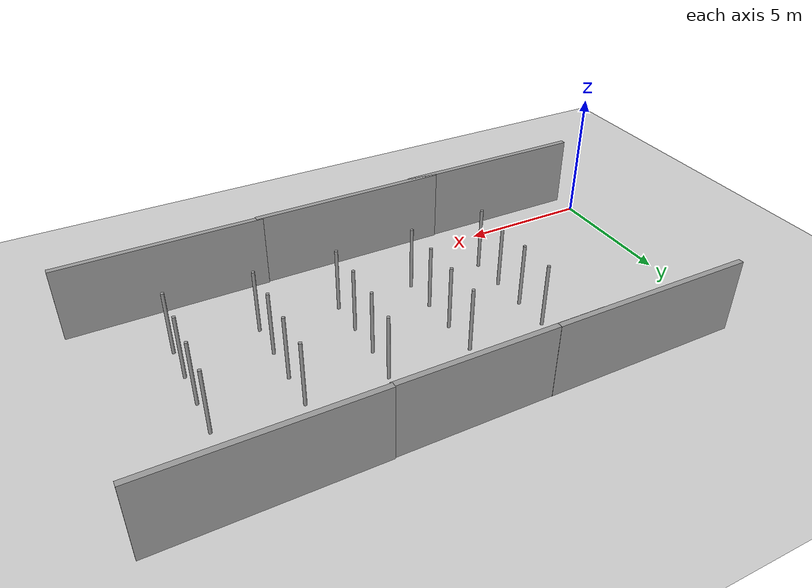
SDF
<sdf version="1.6">
 <world name="default">
  <model name="ground_plane">
   <static>1</static>
   <link name="link">
    <collision name="collision">
     <geometry><plane><normal>0 0 1</normal><size>100 100</size></plane></geometry>
     <surface><friction><ode><mu>100</mu><mu2>50</mu2></ode></friction></surface>
    </collision>
    <visual name="visual">
     <cast_shadows>0</cast_shadows>
     <geometry><plane><normal>0 0 1</normal><size>100 100</size></plane></geometry>
     <material>
      <script><uri>file://media/materials/scripts/gazebo.material</uri><name>Gazebo/Grey</name></script>
     </material>
    </visual>
   </link>
  </model>
  <model name="pole">
   <link name="link_0">
    <inertial>
     <mass>0.0364582</mass>
     <inertia>
      <ixx>0.00312124</ixx>
      <ixy>0</ixy>
      <ixz>0</ixz>
      <iyy>0.00312124</iyy>
      <iyz>0</iyz>
      <izz>0.00016615</izz>
     </inertia>
    </inertial>
    <visual name="visual">
     <geometry><cylinder><radius>0.06</radius><length>2.5</length></cylinder></geometry>
     <material>
      <lighting>1</lighting>
      <script><uri>file://media/materials/scripts/gazebo.material</uri><name>Gazebo/Grey</name></script>
      <ambient>0.3 0.3 0.3 1</ambient>
      <diffuse>0.7 0.7 0.7 1</diffuse>
      <specular>0.01 0.01 0.01 1</specular>
      <emissive>0 0 0 1</emissive>
      <shader type="vertex"><normal_map>__default__</normal_map></shader>
     </material>
    </visual>
    <collision name="collision">
     <geometry><cylinder><radius>0.06</radius><length>2.5</length></cylinder></geometry>
     <surface>
      <friction>
       <ode><mu>1</mu><mu2>1</mu2><fdir1>0 0 0</fdir1><slip1>0</slip1><slip2>0</slip2></ode>
       <torsional>
        <coefficient>1</coefficient>
        <patch_radius>0</patch_radius>
        <surface_radius>0</surface_radius>
        <use_patch_radius>1</use_patch_radius>
        <ode><slip>0</slip></ode>
       </torsional>
      </friction>
      <bounce><restitution_coefficient>0</restitution_coefficient><threshold>1e+06</threshold></bounce>
      <contact>
       <collide_without_contact>0</collide_without_contact>
       <collide_without_contact_bitmask>1</collide_without_contact_bitmask>
       <collide_bitmask>1</collide_bitmask>
       <ode>
        <soft_cfm>0</soft_cfm>
        <soft_erp>0.2</soft_erp>
        <kp>1e+13</kp>
        <kd>1</kd>
        <max_vel>0.01</max_vel>
        <min_depth>0</min_depth>
       </ode>
       <bullet>
        <split_impulse>1</split_impulse>
        <split_impulse_penetration_threshold>-0.01</split_impulse_penetration_threshold>
        <soft_cfm>0</soft_cfm>
        <soft_erp>0.2</soft_erp>
        <kp>1e+13</kp>
        <kd>1</kd>
       </bullet>
      </contact>
     </surface>
    </collision>
   </link>
   <static>0</static>
   <pose>6.00025 1.90193 1.24999 0 1e-06 -0.086409</pose>
  </model>
  <model name="pole_0">
   <link name="link_0">
    <inertial>
     <mass>0.0364582</mass>
     <inertia>
      <ixx>0.00312124</ixx>
      <ixy>0</ixy>
      <ixz>0</ixz>
      <iyy>0.00312124</iyy>
      <iyz>0</iyz>
      <izz>0.00016615</izz>
     </inertia>
    </inertial>
    <visual name="visual">
     <geometry><cylinder><radius>0.06</radius><length>2.5</length></cylinder></geometry>
     <material>
      <lighting>1</lighting>
      <script><uri>file://media/materials/scripts/gazebo.material</uri><name>Gazebo/Grey</name></script>
      <ambient>0.3 0.3 0.3 1</ambient>
      <diffuse>0.7 0.7 0.7 1</diffuse>
      <specular>0.01 0.01 0.01 1</specular>
      <emissive>0 0 0 1</emissive>
      <shader type="vertex"><normal_map>__default__</normal_map></shader>
     </material>
    </visual>
    <collision name="collision">
     <geometry><cylinder><radius>0.06</radius><length>2.5</length></cylinder></geometry>
     <surface>
      <friction>
       <ode><mu>1</mu><mu2>1</mu2><fdir1>0 0 0</fdir1><slip1>0</slip1><slip2>0</slip2></ode>
       <torsional>
        <coefficient>1</coefficient>
        <patch_radius>0</patch_radius>
        <surface_radius>0</surface_radius>
        <use_patch_radius>1</use_patch_radius>
        <ode><slip>0</slip></ode>
       </torsional>
      </friction>
      <bounce><restitution_coefficient>0</restitution_coefficient><threshold>1e+06</threshold></bounce>
      <contact>
       <collide_without_contact>0</collide_without_contact>
       <collide_without_contact_bitmask>1</collide_without_contact_bitmask>
       <collide_bitmask>1</collide_bitmask>
       <ode>
        <soft_cfm>0</soft_cfm>
        <soft_erp>0.2</soft_erp>
        <kp>1e+13</kp>
        <kd>1</kd>
        <max_vel>0.01</max_vel>
        <min_depth>0</min_depth>
       </ode>
       <bullet>
        <split_impulse>1</split_impulse>
        <split_impulse_penetration_threshold>-0.01</split_impulse_penetration_threshold>
        <soft_cfm>0</soft_cfm>
        <soft_erp>0.2</soft_erp>
        <kp>1e+13</kp>
        <kd>1</kd>
       </bullet>
      </contact>
     </surface>
    </collision>
   </link>
   <static>0</static>
   <pose>6.00016 3.30165 1.24999 0 -1e-06 -0.059185</pose>
  </model>
  <model name="pole_1">
   <link name="link_0">
    <inertial>
     <mass>0.0364582</mass>
     <inertia>
      <ixx>0.00312124</ixx>
      <ixy>0</ixy>
      <ixz>0</ixz>
      <iyy>0.00312124</iyy>
      <iyz>0</iyz>
      <izz>0.00016615</izz>
     </inertia>
    </inertial>
    <visual name="visual">
     <geometry><cylinder><radius>0.06</radius><length>2.5</length></cylinder></geometry>
     <material>
      <lighting>1</lighting>
      <script><uri>file://media/materials/scripts/gazebo.material</uri><name>Gazebo/Grey</name></script>
      <ambient>0.3 0.3 0.3 1</ambient>
      <diffuse>0.7 0.7 0.7 1</diffuse>
      <specular>0.01 0.01 0.01 1</specular>
      <emissive>0 0 0 1</emissive>
      <shader type="vertex"><normal_map>__default__</normal_map></shader>
     </material>
    </visual>
    <collision name="collision">
     <geometry><cylinder><radius>0.06</radius><length>2.5</length></cylinder></geometry>
     <surface>
      <friction>
       <ode><mu>1</mu><mu2>1</mu2><fdir1>0 0 0</fdir1><slip1>0</slip1><slip2>0</slip2></ode>
       <torsional>
        <coefficient>1</coefficient>
        <patch_radius>0</patch_radius>
        <surface_radius>0</surface_radius>
        <use_patch_radius>1</use_patch_radius>
        <ode><slip>0</slip></ode>
       </torsional>
      </friction>
      <bounce><restitution_coefficient>0</restitution_coefficient><threshold>1e+06</threshold></bounce>
      <contact>
       <collide_without_contact>0</collide_without_contact>
       <collide_without_contact_bitmask>1</collide_without_contact_bitmask>
       <collide_bitmask>1</collide_bitmask>
       <ode>
        <soft_cfm>0</soft_cfm>
        <soft_erp>0.2</soft_erp>
        <kp>1e+13</kp>
        <kd>1</kd>
        <max_vel>0.01</max_vel>
        <min_depth>0</min_depth>
       </ode>
       <bullet>
        <split_impulse>1</split_impulse>
        <split_impulse_penetration_threshold>-0.01</split_impulse_penetration_threshold>
        <soft_cfm>0</soft_cfm>
        <soft_erp>0.2</soft_erp>
        <kp>1e+13</kp>
        <kd>1</kd>
       </bullet>
      </contact>
     </surface>
    </collision>
   </link>
   <static>0</static>
   <pose>6.00017 4.70128 1.25 -1e-06 -1e-06 -0.059436</pose>
  </model>
  <model name="pole_2">
   <link name="link_0">
    <inertial>
     <mass>0.0364582</mass>
     <inertia>
      <ixx>0.00312124</ixx>
      <ixy>0</ixy>
      <ixz>0</ixz>
      <iyy>0.00312124</iyy>
      <iyz>0</iyz>
      <izz>0.00016615</izz>
     </inertia>
    </inertial>
    <visual name="visual">
     <geometry><cylinder><radius>0.06</radius><length>2.5</length></cylinder></geometry>
     <material>
      <lighting>1</lighting>
      <script><uri>file://media/materials/scripts/gazebo.material</uri><name>Gazebo/Grey</name></script>
      <ambient>0.3 0.3 0.3 1</ambient>
      <diffuse>0.7 0.7 0.7 1</diffuse>
      <specular>0.01 0.01 0.01 1</specular>
      <emissive>0 0 0 1</emissive>
      <shader type="vertex"><normal_map>__default__</normal_map></shader>
     </material>
    </visual>
    <collision name="collision">
     <geometry><cylinder><radius>0.06</radius><length>2.5</length></cylinder></geometry>
     <surface>
      <friction>
       <ode><mu>1</mu><mu2>1</mu2><fdir1>0 0 0</fdir1><slip1>0</slip1><slip2>0</slip2></ode>
       <torsional>
        <coefficient>1</coefficient>
        <patch_radius>0</patch_radius>
        <surface_radius>0</surface_radius>
        <use_patch_radius>1</use_patch_radius>
        <ode><slip>0</slip></ode>
       </torsional>
      </friction>
      <bounce><restitution_coefficient>0</restitution_coefficient><threshold>1e+06</threshold></bounce>
      <contact>
       <collide_without_contact>0</collide_without_contact>
       <collide_without_contact_bitmask>1</collide_without_contact_bitmask>
       <collide_bitmask>1</collide_bitmask>
       <ode>
        <soft_cfm>0</soft_cfm>
        <soft_erp>0.2</soft_erp>
        <kp>1e+13</kp>
        <kd>1</kd>
        <max_vel>0.01</max_vel>
        <min_depth>0</min_depth>
       </ode>
       <bullet>
        <split_impulse>1</split_impulse>
        <split_impulse_penetration_threshold>-0.01</split_impulse_penetration_threshold>
        <soft_cfm>0</soft_cfm>
        <soft_erp>0.2</soft_erp>
        <kp>1e+13</kp>
        <kd>1</kd>
       </bullet>
      </contact>
     </surface>
    </collision>
   </link>
   <static>0</static>
   <pose>6.00019 6.10112 1.24999 -1e-06 1e-06 -0.066745</pose>
  </model>
  <model name="pole_3">
   <link name="link_0">
    <inertial>
     <mass>0.0364582</mass>
     <inertia>
      <ixx>0.00312124</ixx>
      <ixy>0</ixy>
      <ixz>0</ixz>
      <iyy>0.00312124</iyy>
      <iyz>0</iyz>
      <izz>0.00016615</izz>
     </inertia>
    </inertial>
    <visual name="visual">
     <geometry><cylinder><radius>0.06</radius><length>2.5</length></cylinder></geometry>
     <material>
      <lighting>1</lighting>
      <script><uri>file://media/materials/scripts/gazebo.material</uri><name>Gazebo/Grey</name></script>
      <ambient>0.3 0.3 0.3 1</ambient>
      <diffuse>0.7 0.7 0.7 1</diffuse>
      <specular>0.01 0.01 0.01 1</specular>
      <emissive>0 0 0 1</emissive>
      <shader type="vertex"><normal_map>__default__</normal_map></shader>
     </material>
    </visual>
    <collision name="collision">
     <geometry><cylinder><radius>0.06</radius><length>2.5</length></cylinder></geometry>
     <surface>
      <friction>
       <ode><mu>1</mu><mu2>1</mu2><fdir1>0 0 0</fdir1><slip1>0</slip1><slip2>0</slip2></ode>
       <torsional>
        <coefficient>1</coefficient>
        <patch_radius>0</patch_radius>
        <surface_radius>0</surface_radius>
        <use_patch_radius>1</use_patch_radius>
        <ode><slip>0</slip></ode>
       </torsional>
      </friction>
      <bounce><restitution_coefficient>0</restitution_coefficient><threshold>1e+06</threshold></bounce>
      <contact>
       <collide_without_contact>0</collide_without_contact>
       <collide_without_contact_bitmask>1</collide_without_contact_bitmask>
       <collide_bitmask>1</collide_bitmask>
       <ode>
        <soft_cfm>0</soft_cfm>
        <soft_erp>0.2</soft_erp>
        <kp>1e+13</kp>
        <kd>1</kd>
        <max_vel>0.01</max_vel>
        <min_depth>0</min_depth>
       </ode>
       <bullet>
        <split_impulse>1</split_impulse>
        <split_impulse_penetration_threshold>-0.01</split_impulse_penetration_threshold>
        <soft_cfm>0</soft_cfm>
        <soft_erp>0.2</soft_erp>
        <kp>1e+13</kp>
        <kd>1</kd>
       </bullet>
      </contact>
     </surface>
    </collision>
   </link>
   <static>0</static>
   <pose>12.0002 1.90167 1.24999 -1e-06 -0 -0.059461</pose>
  </model>
  <model name="pole_4">
   <link name="link_0">
    <inertial>
     <mass>0.0364582</mass>
     <inertia>
      <ixx>0.00312124</ixx>
      <ixy>0</ixy>
      <ixz>0</ixz>
      <iyy>0.00312124</iyy>
      <iyz>0</iyz>
      <izz>0.00016615</izz>
     </inertia>
    </inertial>
    <visual name="visual">
     <geometry><cylinder><radius>0.06</radius><length>2.5</length></cylinder></geometry>
     <material>
      <lighting>1</lighting>
      <script><uri>file://media/materials/scripts/gazebo.material</uri><name>Gazebo/Grey</name></script>
      <ambient>0.3 0.3 0.3 1</ambient>
      <diffuse>0.7 0.7 0.7 1</diffuse>
      <specular>0.01 0.01 0.01 1</specular>
      <emissive>0 0 0 1</emissive>
      <shader type="vertex"><normal_map>__default__</normal_map></shader>
     </material>
    </visual>
    <collision name="collision">
     <geometry><cylinder><radius>0.06</radius><length>2.5</length></cylinder></geometry>
     <surface>
      <friction>
       <ode><mu>1</mu><mu2>1</mu2><fdir1>0 0 0</fdir1><slip1>0</slip1><slip2>0</slip2></ode>
       <torsional>
        <coefficient>1</coefficient>
        <patch_radius>0</patch_radius>
        <surface_radius>0</surface_radius>
        <use_patch_radius>1</use_patch_radius>
        <ode><slip>0</slip></ode>
       </torsional>
      </friction>
      <bounce><restitution_coefficient>0</restitution_coefficient><threshold>1e+06</threshold></bounce>
      <contact>
       <collide_without_contact>0</collide_without_contact>
       <collide_without_contact_bitmask>1</collide_without_contact_bitmask>
       <collide_bitmask>1</collide_bitmask>
       <ode>
        <soft_cfm>0</soft_cfm>
        <soft_erp>0.2</soft_erp>
        <kp>1e+13</kp>
        <kd>1</kd>
        <max_vel>0.01</max_vel>
        <min_depth>0</min_depth>
       </ode>
       <bullet>
        <split_impulse>1</split_impulse>
        <split_impulse_penetration_threshold>-0.01</split_impulse_penetration_threshold>
        <soft_cfm>0</soft_cfm>
        <soft_erp>0.2</soft_erp>
        <kp>1e+13</kp>
        <kd>1</kd>
       </bullet>
      </contact>
     </surface>
    </collision>
   </link>
   <static>0</static>
   <pose>9.00014 3.30162 1.24999 -1e-06 1e-06 -0.05632</pose>
  </model>
  <model name="pole_5">
   <link name="link_0">
    <inertial>
     <mass>0.0364582</mass>
     <inertia>
      <ixx>0.00312124</ixx>
      <ixy>0</ixy>
      <ixz>0</ixz>
      <iyy>0.00312124</iyy>
      <iyz>0</iyz>
      <izz>0.00016615</izz>
     </inertia>
    </inertial>
    <visual name="visual">
     <geometry><cylinder><radius>0.06</radius><length>2.5</length></cylinder></geometry>
     <material>
      <lighting>1</lighting>
      <script><uri>file://media/materials/scripts/gazebo.material</uri><name>Gazebo/Grey</name></script>
      <ambient>0.3 0.3 0.3 1</ambient>
      <diffuse>0.7 0.7 0.7 1</diffuse>
      <specular>0.01 0.01 0.01 1</specular>
      <emissive>0 0 0 1</emissive>
      <shader type="vertex"><normal_map>__default__</normal_map></shader>
     </material>
    </visual>
    <collision name="collision">
     <geometry><cylinder><radius>0.06</radius><length>2.5</length></cylinder></geometry>
     <surface>
      <friction>
       <ode><mu>1</mu><mu2>1</mu2><fdir1>0 0 0</fdir1><slip1>0</slip1><slip2>0</slip2></ode>
       <torsional>
        <coefficient>1</coefficient>
        <patch_radius>0</patch_radius>
        <surface_radius>0</surface_radius>
        <use_patch_radius>1</use_patch_radius>
        <ode><slip>0</slip></ode>
       </torsional>
      </friction>
      <bounce><restitution_coefficient>0</restitution_coefficient><threshold>1e+06</threshold></bounce>
      <contact>
       <collide_without_contact>0</collide_without_contact>
       <collide_without_contact_bitmask>1</collide_without_contact_bitmask>
       <collide_bitmask>1</collide_bitmask>
       <ode>
        <soft_cfm>0</soft_cfm>
        <soft_erp>0.2</soft_erp>
        <kp>1e+13</kp>
        <kd>1</kd>
        <max_vel>0.01</max_vel>
        <min_depth>0</min_depth>
       </ode>
       <bullet>
        <split_impulse>1</split_impulse>
        <split_impulse_penetration_threshold>-0.01</split_impulse_penetration_threshold>
        <soft_cfm>0</soft_cfm>
        <soft_erp>0.2</soft_erp>
        <kp>1e+13</kp>
        <kd>1</kd>
       </bullet>
      </contact>
     </surface>
    </collision>
   </link>
   <static>0</static>
   <pose>9.00017 4.70125 1.24999 -1e-06 1e-06 -0.058881</pose>
  </model>
  <model name="pole_6">
   <link name="link_0">
    <inertial>
     <mass>0.0364582</mass>
     <inertia>
      <ixx>0.00312124</ixx>
      <ixy>0</ixy>
      <ixz>0</ixz>
      <iyy>0.00312124</iyy>
      <iyz>0</iyz>
      <izz>0.00016615</izz>
     </inertia>
    </inertial>
    <visual name="visual">
     <geometry><cylinder><radius>0.06</radius><length>2.5</length></cylinder></geometry>
     <material>
      <lighting>1</lighting>
      <script><uri>file://media/materials/scripts/gazebo.material</uri><name>Gazebo/Grey</name></script>
      <ambient>0.3 0.3 0.3 1</ambient>
      <diffuse>0.7 0.7 0.7 1</diffuse>
      <specular>0.01 0.01 0.01 1</specular>
      <emissive>0 0 0 1</emissive>
      <shader type="vertex"><normal_map>__default__</normal_map></shader>
     </material>
    </visual>
    <collision name="collision">
     <geometry><cylinder><radius>0.06</radius><length>2.5</length></cylinder></geometry>
     <surface>
      <friction>
       <ode><mu>1</mu><mu2>1</mu2><fdir1>0 0 0</fdir1><slip1>0</slip1><slip2>0</slip2></ode>
       <torsional>
        <coefficient>1</coefficient>
        <patch_radius>0</patch_radius>
        <surface_radius>0</surface_radius>
        <use_patch_radius>1</use_patch_radius>
        <ode><slip>0</slip></ode>
       </torsional>
      </friction>
      <bounce><restitution_coefficient>0</restitution_coefficient><threshold>1e+06</threshold></bounce>
      <contact>
       <collide_without_contact>0</collide_without_contact>
       <collide_without_contact_bitmask>1</collide_without_contact_bitmask>
       <collide_bitmask>1</collide_bitmask>
       <ode>
        <soft_cfm>0</soft_cfm>
        <soft_erp>0.2</soft_erp>
        <kp>1e+13</kp>
        <kd>1</kd>
        <max_vel>0.01</max_vel>
        <min_depth>0</min_depth>
       </ode>
       <bullet>
        <split_impulse>1</split_impulse>
        <split_impulse_penetration_threshold>-0.01</split_impulse_penetration_threshold>
        <soft_cfm>0</soft_cfm>
        <soft_erp>0.2</soft_erp>
        <kp>1e+13</kp>
        <kd>1</kd>
       </bullet>
      </contact>
     </surface>
    </collision>
   </link>
   <static>0</static>
   <pose>9.00015 6.10129 1.25 -1e-06 -1e-06 -0.078964</pose>
  </model>
  <model name="pole_7">
   <link name="link_0">
    <inertial>
     <mass>0.0364582</mass>
     <inertia>
      <ixx>0.00312124</ixx>
      <ixy>0</ixy>
      <ixz>0</ixz>
      <iyy>0.00312124</iyy>
      <iyz>0</iyz>
      <izz>0.00016615</izz>
     </inertia>
    </inertial>
    <visual name="visual">
     <geometry><cylinder><radius>0.06</radius><length>2.5</length></cylinder></geometry>
     <material>
      <lighting>1</lighting>
      <script><uri>file://media/materials/scripts/gazebo.material</uri><name>Gazebo/Grey</name></script>
      <ambient>0.3 0.3 0.3 1</ambient>
      <diffuse>0.7 0.7 0.7 1</diffuse>
      <specular>0.01 0.01 0.01 1</specular>
      <emissive>0 0 0 1</emissive>
      <shader type="vertex"><normal_map>__default__</normal_map></shader>
     </material>
    </visual>
    <collision name="collision">
     <geometry><cylinder><radius>0.06</radius><length>2.5</length></cylinder></geometry>
     <surface>
      <friction>
       <ode><mu>1</mu><mu2>1</mu2><fdir1>0 0 0</fdir1><slip1>0</slip1><slip2>0</slip2></ode>
       <torsional>
        <coefficient>1</coefficient>
        <patch_radius>0</patch_radius>
        <surface_radius>0</surface_radius>
        <use_patch_radius>1</use_patch_radius>
        <ode><slip>0</slip></ode>
       </torsional>
      </friction>
      <bounce><restitution_coefficient>0</restitution_coefficient><threshold>1e+06</threshold></bounce>
      <contact>
       <collide_without_contact>0</collide_without_contact>
       <collide_without_contact_bitmask>1</collide_without_contact_bitmask>
       <collide_bitmask>1</collide_bitmask>
       <ode>
        <soft_cfm>0</soft_cfm>
        <soft_erp>0.2</soft_erp>
        <kp>1e+13</kp>
        <kd>1</kd>
        <max_vel>0.01</max_vel>
        <min_depth>0</min_depth>
       </ode>
       <bullet>
        <split_impulse>1</split_impulse>
        <split_impulse_penetration_threshold>-0.01</split_impulse_penetration_threshold>
        <soft_cfm>0</soft_cfm>
        <soft_erp>0.2</soft_erp>
        <kp>1e+13</kp>
        <kd>1</kd>
       </bullet>
      </contact>
     </surface>
    </collision>
   </link>
   <static>0</static>
   <pose>9.00026 1.90181 1.25 0 -1e-06 -0.052308</pose>
  </model>
  <model name="pole_8">
   <link name="link_0">
    <inertial>
     <mass>0.0364582</mass>
     <inertia>
      <ixx>0.00312124</ixx>
      <ixy>0</ixy>
      <ixz>0</ixz>
      <iyy>0.00312124</iyy>
      <iyz>0</iyz>
      <izz>0.00016615</izz>
     </inertia>
    </inertial>
    <visual name="visual">
     <geometry><cylinder><radius>0.06</radius><length>2.5</length></cylinder></geometry>
     <material>
      <lighting>1</lighting>
      <script><uri>file://media/materials/scripts/gazebo.material</uri><name>Gazebo/Grey</name></script>
      <ambient>0.3 0.3 0.3 1</ambient>
      <diffuse>0.7 0.7 0.7 1</diffuse>
      <specular>0.01 0.01 0.01 1</specular>
      <emissive>0 0 0 1</emissive>
      <shader type="vertex"><normal_map>__default__</normal_map></shader>
     </material>
    </visual>
    <collision name="collision">
     <geometry><cylinder><radius>0.06</radius><length>2.5</length></cylinder></geometry>
     <surface>
      <friction>
       <ode><mu>1</mu><mu2>1</mu2><fdir1>0 0 0</fdir1><slip1>0</slip1><slip2>0</slip2></ode>
       <torsional>
        <coefficient>1</coefficient>
        <patch_radius>0</patch_radius>
        <surface_radius>0</surface_radius>
        <use_patch_radius>1</use_patch_radius>
        <ode><slip>0</slip></ode>
       </torsional>
      </friction>
      <bounce><restitution_coefficient>0</restitution_coefficient><threshold>1e+06</threshold></bounce>
      <contact>
       <collide_without_contact>0</collide_without_contact>
       <collide_without_contact_bitmask>1</collide_without_contact_bitmask>
       <collide_bitmask>1</collide_bitmask>
       <ode>
        <soft_cfm>0</soft_cfm>
        <soft_erp>0.2</soft_erp>
        <kp>1e+13</kp>
        <kd>1</kd>
        <max_vel>0.01</max_vel>
        <min_depth>0</min_depth>
       </ode>
       <bullet>
        <split_impulse>1</split_impulse>
        <split_impulse_penetration_threshold>-0.01</split_impulse_penetration_threshold>
        <soft_cfm>0</soft_cfm>
        <soft_erp>0.2</soft_erp>
        <kp>1e+13</kp>
        <kd>1</kd>
       </bullet>
      </contact>
     </surface>
    </collision>
   </link>
   <static>0</static>
   <pose>12.0002 3.30152 1.24999 0 -1e-06 -0.054215</pose>
  </model>
  <model name="pole_9">
   <link name="link_0">
    <inertial>
     <mass>0.0364582</mass>
     <inertia>
      <ixx>0.00312124</ixx>
      <ixy>0</ixy>
      <ixz>0</ixz>
      <iyy>0.00312124</iyy>
      <iyz>0</iyz>
      <izz>0.00016615</izz>
     </inertia>
    </inertial>
    <visual name="visual">
     <geometry><cylinder><radius>0.06</radius><length>2.5</length></cylinder></geometry>
     <material>
      <lighting>1</lighting>
      <script><uri>file://media/materials/scripts/gazebo.material</uri><name>Gazebo/Grey</name></script>
      <ambient>0.3 0.3 0.3 1</ambient>
      <diffuse>0.7 0.7 0.7 1</diffuse>
      <specular>0.01 0.01 0.01 1</specular>
      <emissive>0 0 0 1</emissive>
      <shader type="vertex"><normal_map>__default__</normal_map></shader>
     </material>
    </visual>
    <collision name="collision">
     <geometry><cylinder><radius>0.06</radius><length>2.5</length></cylinder></geometry>
     <surface>
      <friction>
       <ode><mu>1</mu><mu2>1</mu2><fdir1>0 0 0</fdir1><slip1>0</slip1><slip2>0</slip2></ode>
       <torsional>
        <coefficient>1</coefficient>
        <patch_radius>0</patch_radius>
        <surface_radius>0</surface_radius>
        <use_patch_radius>1</use_patch_radius>
        <ode><slip>0</slip></ode>
       </torsional>
      </friction>
      <bounce><restitution_coefficient>0</restitution_coefficient><threshold>1e+06</threshold></bounce>
      <contact>
       <collide_without_contact>0</collide_without_contact>
       <collide_without_contact_bitmask>1</collide_without_contact_bitmask>
       <collide_bitmask>1</collide_bitmask>
       <ode>
        <soft_cfm>0</soft_cfm>
        <soft_erp>0.2</soft_erp>
        <kp>1e+13</kp>
        <kd>1</kd>
        <max_vel>0.01</max_vel>
        <min_depth>0</min_depth>
       </ode>
       <bullet>
        <split_impulse>1</split_impulse>
        <split_impulse_penetration_threshold>-0.01</split_impulse_penetration_threshold>
        <soft_cfm>0</soft_cfm>
        <soft_erp>0.2</soft_erp>
        <kp>1e+13</kp>
        <kd>1</kd>
       </bullet>
      </contact>
     </surface>
    </collision>
   </link>
   <static>0</static>
   <pose>12.0002 4.70116 1.25 0 1e-06 -0.058336</pose>
  </model>
  <model name="pole_10">
   <link name="link_0">
    <inertial>
     <mass>0.0364582</mass>
     <inertia>
      <ixx>0.00312124</ixx>
      <ixy>0</ixy>
      <ixz>0</ixz>
      <iyy>0.00312124</iyy>
      <iyz>0</iyz>
      <izz>0.00016615</izz>
     </inertia>
    </inertial>
    <visual name="visual">
     <geometry><cylinder><radius>0.06</radius><length>2.5</length></cylinder></geometry>
     <material>
      <lighting>1</lighting>
      <script><uri>file://media/materials/scripts/gazebo.material</uri><name>Gazebo/Grey</name></script>
      <ambient>0.3 0.3 0.3 1</ambient>
      <diffuse>0.7 0.7 0.7 1</diffuse>
      <specular>0.01 0.01 0.01 1</specular>
      <emissive>0 0 0 1</emissive>
      <shader type="vertex"><normal_map>__default__</normal_map></shader>
     </material>
    </visual>
    <collision name="collision">
     <geometry><cylinder><radius>0.06</radius><length>2.5</length></cylinder></geometry>
     <surface>
      <friction>
       <ode><mu>1</mu><mu2>1</mu2><fdir1>0 0 0</fdir1><slip1>0</slip1><slip2>0</slip2></ode>
       <torsional>
        <coefficient>1</coefficient>
        <patch_radius>0</patch_radius>
        <surface_radius>0</surface_radius>
        <use_patch_radius>1</use_patch_radius>
        <ode><slip>0</slip></ode>
       </torsional>
      </friction>
      <bounce><restitution_coefficient>0</restitution_coefficient><threshold>1e+06</threshold></bounce>
      <contact>
       <collide_without_contact>0</collide_without_contact>
       <collide_without_contact_bitmask>1</collide_without_contact_bitmask>
       <collide_bitmask>1</collide_bitmask>
       <ode>
        <soft_cfm>0</soft_cfm>
        <soft_erp>0.2</soft_erp>
        <kp>1e+13</kp>
        <kd>1</kd>
        <max_vel>0.01</max_vel>
        <min_depth>0</min_depth>
       </ode>
       <bullet>
        <split_impulse>1</split_impulse>
        <split_impulse_penetration_threshold>-0.01</split_impulse_penetration_threshold>
        <soft_cfm>0</soft_cfm>
        <soft_erp>0.2</soft_erp>
        <kp>1e+13</kp>
        <kd>1</kd>
       </bullet>
      </contact>
     </surface>
    </collision>
   </link>
   <static>0</static>
   <pose>12.1071 6.10119 1.25 -0 1e-06 -0.055066</pose>
  </model>
  <model name="pole_11">
   <link name="link_0">
    <inertial>
     <mass>0.0364582</mass>
     <inertia>
      <ixx>0.00312124</ixx>
      <ixy>0</ixy>
      <ixz>0</ixz>
      <iyy>0.00312124</iyy>
      <iyz>0</iyz>
      <izz>0.00016615</izz>
     </inertia>
    </inertial>
    <visual name="visual">
     <geometry><cylinder><radius>0.06</radius><length>2.5</length></cylinder></geometry>
     <material>
      <lighting>1</lighting>
      <script><uri>file://media/materials/scripts/gazebo.material</uri><name>Gazebo/Grey</name></script>
      <ambient>0.3 0.3 0.3 1</ambient>
      <diffuse>0.7 0.7 0.7 1</diffuse>
      <specular>0.01 0.01 0.01 1</specular>
      <emissive>0 0 0 1</emissive>
      <shader type="vertex"><normal_map>__default__</normal_map></shader>
     </material>
    </visual>
    <collision name="collision">
     <geometry><cylinder><radius>0.06</radius><length>2.5</length></cylinder></geometry>
     <surface>
      <friction>
       <ode><mu>1</mu><mu2>1</mu2><fdir1>0 0 0</fdir1><slip1>0</slip1><slip2>0</slip2></ode>
       <torsional>
        <coefficient>1</coefficient>
        <patch_radius>0</patch_radius>
        <surface_radius>0</surface_radius>
        <use_patch_radius>1</use_patch_radius>
        <ode><slip>0</slip></ode>
       </torsional>
      </friction>
      <bounce><restitution_coefficient>0</restitution_coefficient><threshold>1e+06</threshold></bounce>
      <contact>
       <collide_without_contact>0</collide_without_contact>
       <collide_without_contact_bitmask>1</collide_without_contact_bitmask>
       <collide_bitmask>1</collide_bitmask>
       <ode>
        <soft_cfm>0</soft_cfm>
        <soft_erp>0.2</soft_erp>
        <kp>1e+13</kp>
        <kd>1</kd>
        <max_vel>0.01</max_vel>
        <min_depth>0</min_depth>
       </ode>
       <bullet>
        <split_impulse>1</split_impulse>
        <split_impulse_penetration_threshold>-0.01</split_impulse_penetration_threshold>
        <soft_cfm>0</soft_cfm>
        <soft_erp>0.2</soft_erp>
        <kp>1e+13</kp>
        <kd>1</kd>
       </bullet>
      </contact>
     </surface>
    </collision>
   </link>
   <static>0</static>
   <pose>15.0002 1.80129 1.24999 -1e-06 1e-06 -0.051988</pose>
  </model>
  <model name="pole_12">
   <link name="link_0">
    <inertial>
     <mass>0.0364582</mass>
     <inertia>
      <ixx>0.00312124</ixx>
      <ixy>0</ixy>
      <ixz>0</ixz>
      <iyy>0.00312124</iyy>
      <iyz>0</iyz>
      <izz>0.00016615</izz>
     </inertia>
    </inertial>
    <visual name="visual">
     <geometry><cylinder><radius>0.06</radius><length>2.5</length></cylinder></geometry>
     <material>
      <lighting>1</lighting>
      <script><uri>file://media/materials/scripts/gazebo.material</uri><name>Gazebo/Grey</name></script>
      <ambient>0.3 0.3 0.3 1</ambient>
      <diffuse>0.7 0.7 0.7 1</diffuse>
      <specular>0.01 0.01 0.01 1</specular>
      <emissive>0 0 0 1</emissive>
      <shader type="vertex"><normal_map>__default__</normal_map></shader>
     </material>
    </visual>
    <collision name="collision">
     <geometry><cylinder><radius>0.06</radius><length>2.5</length></cylinder></geometry>
     <surface>
      <friction>
       <ode><mu>1</mu><mu2>1</mu2><fdir1>0 0 0</fdir1><slip1>0</slip1><slip2>0</slip2></ode>
       <torsional>
        <coefficient>1</coefficient>
        <patch_radius>0</patch_radius>
        <surface_radius>0</surface_radius>
        <use_patch_radius>1</use_patch_radius>
        <ode><slip>0</slip></ode>
       </torsional>
      </friction>
      <bounce><restitution_coefficient>0</restitution_coefficient><threshold>1e+06</threshold></bounce>
      <contact>
       <collide_without_contact>0</collide_without_contact>
       <collide_without_contact_bitmask>1</collide_without_contact_bitmask>
       <collide_bitmask>1</collide_bitmask>
       <ode>
        <soft_cfm>0</soft_cfm>
        <soft_erp>0.2</soft_erp>
        <kp>1e+13</kp>
        <kd>1</kd>
        <max_vel>0.01</max_vel>
        <min_depth>0</min_depth>
       </ode>
       <bullet>
        <split_impulse>1</split_impulse>
        <split_impulse_penetration_threshold>-0.01</split_impulse_penetration_threshold>
        <soft_cfm>0</soft_cfm>
        <soft_erp>0.2</soft_erp>
        <kp>1e+13</kp>
        <kd>1</kd>
       </bullet>
      </contact>
     </surface>
    </collision>
   </link>
   <static>0</static>
   <pose>18.0002 1.60177 1.25 0 1e-06 -0.053116</pose>
  </model>
  <model name="pole_14">
   <link name="link_0">
    <inertial>
     <mass>0.0364582</mass>
     <inertia>
      <ixx>0.00312124</ixx>
      <ixy>0</ixy>
      <ixz>0</ixz>
      <iyy>0.00312124</iyy>
      <iyz>0</iyz>
      <izz>0.00016615</izz>
     </inertia>
    </inertial>
    <visual name="visual">
     <geometry><cylinder><radius>0.06</radius><length>2.5</length></cylinder></geometry>
     <material>
      <lighting>1</lighting>
      <script><uri>file://media/materials/scripts/gazebo.material</uri><name>Gazebo/Grey</name></script>
      <ambient>0.3 0.3 0.3 1</ambient>
      <diffuse>0.7 0.7 0.7 1</diffuse>
      <specular>0.01 0.01 0.01 1</specular>
      <emissive>0 0 0 1</emissive>
      <shader type="vertex"><normal_map>__default__</normal_map></shader>
     </material>
    </visual>
    <collision name="collision">
     <geometry><cylinder><radius>0.06</radius><length>2.5</length></cylinder></geometry>
     <surface>
      <friction>
       <ode><mu>1</mu><mu2>1</mu2><fdir1>0 0 0</fdir1><slip1>0</slip1><slip2>0</slip2></ode>
       <torsional>
        <coefficient>1</coefficient>
        <patch_radius>0</patch_radius>
        <surface_radius>0</surface_radius>
        <use_patch_radius>1</use_patch_radius>
        <ode><slip>0</slip></ode>
       </torsional>
      </friction>
      <bounce><restitution_coefficient>0</restitution_coefficient><threshold>1e+06</threshold></bounce>
      <contact>
       <collide_without_contact>0</collide_without_contact>
       <collide_without_contact_bitmask>1</collide_without_contact_bitmask>
       <collide_bitmask>1</collide_bitmask>
       <ode>
        <soft_cfm>0</soft_cfm>
        <soft_erp>0.2</soft_erp>
        <kp>1e+13</kp>
        <kd>1</kd>
        <max_vel>0.01</max_vel>
        <min_depth>0</min_depth>
       </ode>
       <bullet>
        <split_impulse>1</split_impulse>
        <split_impulse_penetration_threshold>-0.01</split_impulse_penetration_threshold>
        <soft_cfm>0</soft_cfm>
        <soft_erp>0.2</soft_erp>
        <kp>1e+13</kp>
        <kd>1</kd>
       </bullet>
      </contact>
     </surface>
    </collision>
   </link>
   <static>0</static>
   <pose>15.0002 3.20142 1.25 -1e-06 -1e-06 -0.027402</pose>
  </model>
  <model name="pole_15">
   <link name="link_0">
    <inertial>
     <mass>0.0364582</mass>
     <inertia>
      <ixx>0.00312124</ixx>
      <ixy>0</ixy>
      <ixz>0</ixz>
      <iyy>0.00312124</iyy>
      <iyz>0</iyz>
      <izz>0.00016615</izz>
     </inertia>
    </inertial>
    <visual name="visual">
     <geometry><cylinder><radius>0.06</radius><length>2.5</length></cylinder></geometry>
     <material>
      <lighting>1</lighting>
      <script><uri>file://media/materials/scripts/gazebo.material</uri><name>Gazebo/Grey</name></script>
      <ambient>0.3 0.3 0.3 1</ambient>
      <diffuse>0.7 0.7 0.7 1</diffuse>
      <specular>0.01 0.01 0.01 1</specular>
      <emissive>0 0 0 1</emissive>
      <shader type="vertex"><normal_map>__default__</normal_map></shader>
     </material>
    </visual>
    <collision name="collision">
     <geometry><cylinder><radius>0.06</radius><length>2.5</length></cylinder></geometry>
     <surface>
      <friction>
       <ode><mu>1</mu><mu2>1</mu2><fdir1>0 0 0</fdir1><slip1>0</slip1><slip2>0</slip2></ode>
       <torsional>
        <coefficient>1</coefficient>
        <patch_radius>0</patch_radius>
        <surface_radius>0</surface_radius>
        <use_patch_radius>1</use_patch_radius>
        <ode><slip>0</slip></ode>
       </torsional>
      </friction>
      <bounce><restitution_coefficient>0</restitution_coefficient><threshold>1e+06</threshold></bounce>
      <contact>
       <collide_without_contact>0</collide_without_contact>
       <collide_without_contact_bitmask>1</collide_without_contact_bitmask>
       <collide_bitmask>1</collide_bitmask>
       <ode>
        <soft_cfm>0</soft_cfm>
        <soft_erp>0.2</soft_erp>
        <kp>1e+13</kp>
        <kd>1</kd>
        <max_vel>0.01</max_vel>
        <min_depth>0</min_depth>
       </ode>
       <bullet>
        <split_impulse>1</split_impulse>
        <split_impulse_penetration_threshold>-0.01</split_impulse_penetration_threshold>
        <soft_cfm>0</soft_cfm>
        <soft_erp>0.2</soft_erp>
        <kp>1e+13</kp>
        <kd>1</kd>
       </bullet>
      </contact>
     </surface>
    </collision>
   </link>
   <static>0</static>
   <pose>18.0002 3.00143 1.24999 -1e-06 -0 0.034978</pose>
  </model>
  <model name="pole_17">
   <link name="link_0">
    <inertial>
     <mass>0.0364582</mass>
     <inertia>
      <ixx>0.00312124</ixx>
      <ixy>0</ixy>
      <ixz>0</ixz>
      <iyy>0.00312124</iyy>
      <iyz>0</iyz>
      <izz>0.00016615</izz>
     </inertia>
    </inertial>
    <visual name="visual">
     <geometry><cylinder><radius>0.06</radius><length>2.5</length></cylinder></geometry>
     <material>
      <lighting>1</lighting>
      <script><uri>file://media/materials/scripts/gazebo.material</uri><name>Gazebo/Grey</name></script>
      <ambient>0.3 0.3 0.3 1</ambient>
      <diffuse>0.7 0.7 0.7 1</diffuse>
      <specular>0.01 0.01 0.01 1</specular>
      <emissive>0 0 0 1</emissive>
      <shader type="vertex"><normal_map>__default__</normal_map></shader>
     </material>
    </visual>
    <collision name="collision">
     <geometry><cylinder><radius>0.06</radius><length>2.5</length></cylinder></geometry>
     <surface>
      <friction>
       <ode><mu>1</mu><mu2>1</mu2><fdir1>0 0 0</fdir1><slip1>0</slip1><slip2>0</slip2></ode>
       <torsional>
        <coefficient>1</coefficient>
        <patch_radius>0</patch_radius>
        <surface_radius>0</surface_radius>
        <use_patch_radius>1</use_patch_radius>
        <ode><slip>0</slip></ode>
       </torsional>
      </friction>
      <bounce><restitution_coefficient>0</restitution_coefficient><threshold>1e+06</threshold></bounce>
      <contact>
       <collide_without_contact>0</collide_without_contact>
       <collide_without_contact_bitmask>1</collide_without_contact_bitmask>
       <collide_bitmask>1</collide_bitmask>
       <ode>
        <soft_cfm>0</soft_cfm>
        <soft_erp>0.2</soft_erp>
        <kp>1e+13</kp>
        <kd>1</kd>
        <max_vel>0.01</max_vel>
        <min_depth>0</min_depth>
       </ode>
       <bullet>
        <split_impulse>1</split_impulse>
        <split_impulse_penetration_threshold>-0.01</split_impulse_penetration_threshold>
        <soft_cfm>0</soft_cfm>
        <soft_erp>0.2</soft_erp>
        <kp>1e+13</kp>
        <kd>1</kd>
       </bullet>
      </contact>
     </surface>
    </collision>
   </link>
   <static>0</static>
   <pose>15.0002 4.60107 1.25 0 -1e-06 -0.057479</pose>
  </model>
  <model name="pole_20">
   <link name="link_0">
    <inertial>
     <mass>0.0364582</mass>
     <inertia>
      <ixx>0.00312124</ixx>
      <ixy>0</ixy>
      <ixz>0</ixz>
      <iyy>0.00312124</iyy>
      <iyz>0</iyz>
      <izz>0.00016615</izz>
     </inertia>
    </inertial>
    <visual name="visual">
     <geometry><cylinder><radius>0.06</radius><length>2.5</length></cylinder></geometry>
     <material>
      <lighting>1</lighting>
      <script><uri>file://media/materials/scripts/gazebo.material</uri><name>Gazebo/Grey</name></script>
      <ambient>0.3 0.3 0.3 1</ambient>
      <diffuse>0.7 0.7 0.7 1</diffuse>
      <specular>0.01 0.01 0.01 1</specular>
      <emissive>0 0 0 1</emissive>
      <shader type="vertex"><normal_map>__default__</normal_map></shader>
     </material>
    </visual>
    <collision name="collision">
     <geometry><cylinder><radius>0.06</radius><length>2.5</length></cylinder></geometry>
     <surface>
      <friction>
       <ode><mu>1</mu><mu2>1</mu2><fdir1>0 0 0</fdir1><slip1>0</slip1><slip2>0</slip2></ode>
       <torsional>
        <coefficient>1</coefficient>
        <patch_radius>0</patch_radius>
        <surface_radius>0</surface_radius>
        <use_patch_radius>1</use_patch_radius>
        <ode><slip>0</slip></ode>
       </torsional>
      </friction>
      <bounce><restitution_coefficient>0</restitution_coefficient><threshold>1e+06</threshold></bounce>
      <contact>
       <collide_without_contact>0</collide_without_contact>
       <collide_without_contact_bitmask>1</collide_without_contact_bitmask>
       <collide_bitmask>1</collide_bitmask>
       <ode>
        <soft_cfm>0</soft_cfm>
        <soft_erp>0.2</soft_erp>
        <kp>1e+13</kp>
        <kd>1</kd>
        <max_vel>0.01</max_vel>
        <min_depth>0</min_depth>
       </ode>
       <bullet>
        <split_impulse>1</split_impulse>
        <split_impulse_penetration_threshold>-0.01</split_impulse_penetration_threshold>
        <soft_cfm>0</soft_cfm>
        <soft_erp>0.2</soft_erp>
        <kp>1e+13</kp>
        <kd>1</kd>
       </bullet>
      </contact>
     </surface>
    </collision>
   </link>
   <static>0</static>
   <pose>15.0001 6.00093 1.24999 -1e-06 -0 -0.052469</pose>
  </model>
  <model name="grey_wall">
   <static>1</static>
   <link name="link">
    <pose>0 0 1.4 0 -0 0</pose>
    <collision name="collision"><geometry><box><size>7.5 0.2 2.8</size></box></geometry></collision>
    <visual name="visual">
     <cast_shadows>0</cast_shadows>
     <geometry><box><size>7.5 0.2 2.8</size></box></geometry>
     <material>
      <script>
       <uri>model://grey_wall/materials/scripts</uri>
       <uri>model://grey_wall/materials/textures</uri>
       <name>vrc/grey_wall</name>
      </script>
     </material>
    </visual>
   </link>
   <pose>9.84399 9.17396 0 0 -0 0</pose>
  </model>
  <model name="grey_wall_clone">
   <static>1</static>
   <link name="link">
    <pose>0 0 1.4 0 -0 0</pose>
    <collision name="collision"><geometry><box><size>7.5 0.2 2.8</size></box></geometry></collision>
    <visual name="visual">
     <cast_shadows>0</cast_shadows>
     <geometry><box><size>7.5 0.2 2.8</size></box></geometry>
     <material>
      <script>
       <uri>model://grey_wall/materials/scripts</uri>
       <uri>model://grey_wall/materials/textures</uri>
       <name>vrc/grey_wall</name>
      </script>
     </material>
    </visual>
   </link>
   <pose>17.2685 9.20692 0 0 -0 0</pose>
  </model>
  <model name="grey_wall_clone_1">
   <static>1</static>
   <link name="link">
    <pose>0 0 1.4 0 -0 0</pose>
    <collision name="collision"><geometry><box><size>7.5 0.2 2.8</size></box></geometry></collision>
    <visual name="visual">
     <cast_shadows>0</cast_shadows>
     <geometry><box><size>7.5 0.2 2.8</size></box></geometry>
     <material>
      <script>
       <uri>model://grey_wall/materials/scripts</uri>
       <uri>model://grey_wall/materials/textures</uri>
       <name>vrc/grey_wall</name>
      </script>
     </material>
    </visual>
   </link>
   <pose>10.1321 -0.990005 0 0 -0 0</pose>
  </model>
  <model name="grey_wall_clone_1_clone">
   <static>1</static>
   <link name="link">
    <pose>0 0 1.4 0 -0 0</pose>
    <collision name="collision"><geometry><box><size>7.5 0.2 2.8</size></box></geometry></collision>
    <visual name="visual">
     <cast_shadows>0</cast_shadows>
     <geometry><box><size>7.5 0.2 2.8</size></box></geometry>
     <material>
      <script>
       <uri>model://grey_wall/materials/scripts</uri>
       <uri>model://grey_wall/materials/textures</uri>
       <name>vrc/grey_wall</name>
      </script>
     </material>
    </visual>
   </link>
   <pose>17.4015 -0.945461 0 0 -0 0</pose>
  </model>
  <model name="pole_23">
   <link name="link_0">
    <inertial>
     <mass>0.0364582</mass>
     <inertia>
      <ixx>0.00312124</ixx>
      <ixy>0</ixy>
      <ixz>0</ixz>
      <iyy>0.00312124</iyy>
      <iyz>0</iyz>
      <izz>0.00016615</izz>
     </inertia>
    </inertial>
    <visual name="visual">
     <geometry><cylinder><radius>0.06</radius><length>2.5</length></cylinder></geometry>
     <material>
      <lighting>1</lighting>
      <script><uri>file://media/materials/scripts/gazebo.material</uri><name>Gazebo/Grey</name></script>
      <ambient>0.3 0.3 0.3 1</ambient>
      <diffuse>0.7 0.7 0.7 1</diffuse>
      <specular>0.01 0.01 0.01 1</specular>
      <emissive>0 0 0 1</emissive>
      <shader type="vertex"><normal_map>__default__</normal_map></shader>
     </material>
    </visual>
    <collision name="collision">
     <geometry><cylinder><radius>0.06</radius><length>2.5</length></cylinder></geometry>
     <surface>
      <friction>
       <ode><mu>1</mu><mu2>1</mu2><fdir1>0 0 0</fdir1><slip1>0</slip1><slip2>0</slip2></ode>
       <torsional>
        <coefficient>1</coefficient>
        <patch_radius>0</patch_radius>
        <surface_radius>0</surface_radius>
        <use_patch_radius>1</use_patch_radius>
        <ode><slip>0</slip></ode>
       </torsional>
      </friction>
      <bounce><restitution_coefficient>0</restitution_coefficient><threshold>1e+06</threshold></bounce>
      <contact>
       <collide_without_contact>0</collide_without_contact>
       <collide_without_contact_bitmask>1</collide_without_contact_bitmask>
       <collide_bitmask>1</collide_bitmask>
       <ode>
        <soft_cfm>0</soft_cfm>
        <soft_erp>0.2</soft_erp>
        <kp>1e+13</kp>
        <kd>1</kd>
        <max_vel>0.01</max_vel>
        <min_depth>0</min_depth>
       </ode>
       <bullet>
        <split_impulse>1</split_impulse>
        <split_impulse_penetration_threshold>-0.01</split_impulse_penetration_threshold>
        <soft_cfm>0</soft_cfm>
        <soft_erp>0.2</soft_erp>
        <kp>1e+13</kp>
        <kd>1</kd>
       </bullet>
      </contact>
     </surface>
    </collision>
   </link>
   <static>0</static>
   <pose>18.0001 5.80089 1.25 1e-06 1e-06 -0.019979</pose>
  </model>
  <model name="pole_24">
   <link name="link_0">
    <inertial>
     <mass>0.0364582</mass>
     <inertia>
      <ixx>0.00312124</ixx>
      <ixy>0</ixy>
      <ixz>0</ixz>
      <iyy>0.00312124</iyy>
      <iyz>0</iyz>
      <izz>0.00016615</izz>
     </inertia>
    </inertial>
    <visual name="visual">
     <geometry><cylinder><radius>0.06</radius><length>2.5</length></cylinder></geometry>
     <material>
      <lighting>1</lighting>
      <script><uri>file://media/materials/scripts/gazebo.material</uri><name>Gazebo/Grey</name></script>
      <ambient>0.3 0.3 0.3 1</ambient>
      <diffuse>0.7 0.7 0.7 1</diffuse>
      <specular>0.01 0.01 0.01 1</specular>
      <emissive>0 0 0 1</emissive>
      <shader type="vertex"><normal_map>__default__</normal_map></shader>
     </material>
    </visual>
    <collision name="collision">
     <geometry><cylinder><radius>0.06</radius><length>2.5</length></cylinder></geometry>
     <surface>
      <friction>
       <ode><mu>1</mu><mu2>1</mu2><fdir1>0 0 0</fdir1><slip1>0</slip1><slip2>0</slip2></ode>
       <torsional>
        <coefficient>1</coefficient>
        <patch_radius>0</patch_radius>
        <surface_radius>0</surface_radius>
        <use_patch_radius>1</use_patch_radius>
        <ode><slip>0</slip></ode>
       </torsional>
      </friction>
      <bounce><restitution_coefficient>0</restitution_coefficient><threshold>1e+06</threshold></bounce>
      <contact>
       <collide_without_contact>0</collide_without_contact>
       <collide_without_contact_bitmask>1</collide_without_contact_bitmask>
       <collide_bitmask>1</collide_bitmask>
       <ode>
        <soft_cfm>0</soft_cfm>
        <soft_erp>0.2</soft_erp>
        <kp>1e+13</kp>
        <kd>1</kd>
        <max_vel>0.01</max_vel>
        <min_depth>0</min_depth>
       </ode>
       <bullet>
        <split_impulse>1</split_impulse>
        <split_impulse_penetration_threshold>-0.01</split_impulse_penetration_threshold>
        <soft_cfm>0</soft_cfm>
        <soft_erp>0.2</soft_erp>
        <kp>1e+13</kp>
        <kd>1</kd>
       </bullet>
      </contact>
     </surface>
    </collision>
   </link>
   <static>0</static>
   <pose>18.0001 4.40082 1.25 -1e-06 1e-06 -0.018078</pose>
  </model>
  <model name="grey_wall_clone_2">
   <static>1</static>
   <link name="link">
    <pose>0 0 1.4 0 -0 0</pose>
    <collision name="collision"><geometry><box><size>7.5 0.2 2.8</size></box></geometry></collision>
    <visual name="visual">
     <cast_shadows>0</cast_shadows>
     <geometry><box><size>7.5 0.2 2.8</size></box></geometry>
     <material>
      <script>
       <uri>model://grey_wall/materials/scripts</uri>
       <uri>model://grey_wall/materials/textures</uri>
       <name>vrc/grey_wall</name>
      </script>
     </material>
    </visual>
   </link>
   <pose>4.15565 9.18136 0 0 -0 0</pose>
  </model>
  <model name="grey_wall_clone_2_clone">
   <static>1</static>
   <link name="link">
    <pose>0 0 1.4 0 -0 0</pose>
    <collision name="collision"><geometry><box><size>7.5 0.2 2.8</size></box></geometry></collision>
    <visual name="visual">
     <cast_shadows>0</cast_shadows>
     <geometry><box><size>7.5 0.2 2.8</size></box></geometry>
     <material>
      <script>
       <uri>model://grey_wall/materials/scripts</uri>
       <uri>model://grey_wall/materials/textures</uri>
       <name>vrc/grey_wall</name>
      </script>
     </material>
    </visual>
   </link>
   <pose>3.7891 -1.03538 0 0 -0 0</pose>
  </model>
 </world>
</sdf>
